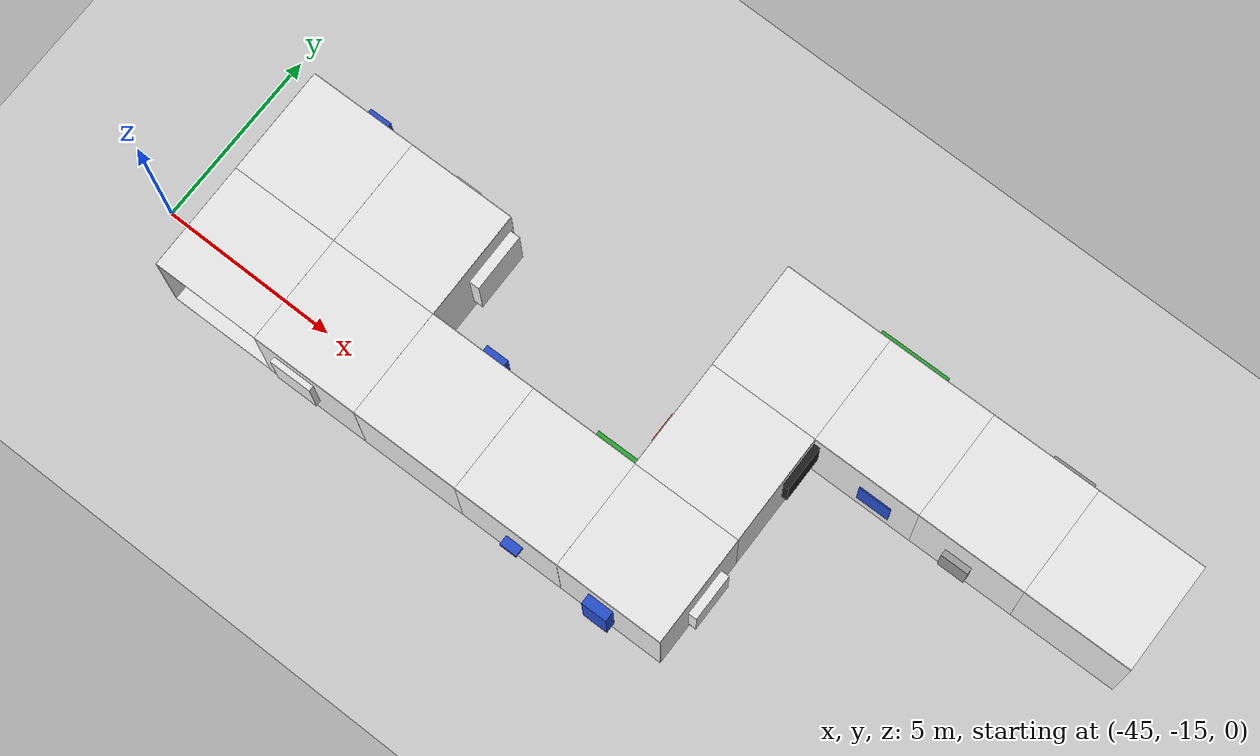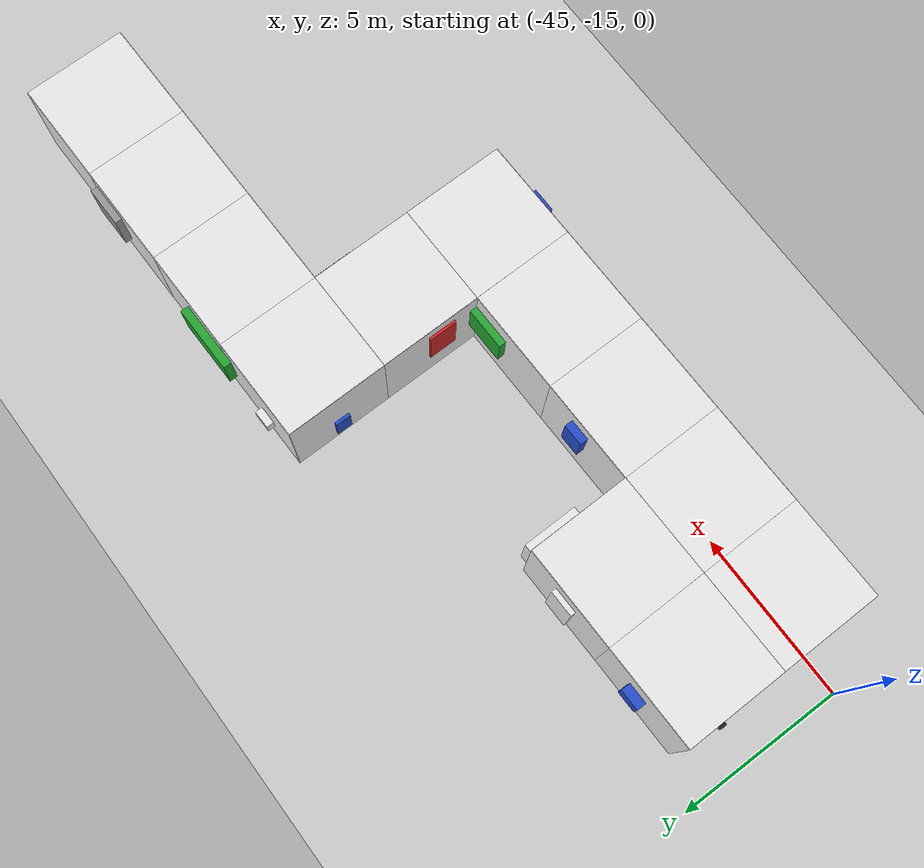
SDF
<sdf version="1.6">
 <world name="default">
  <model name="ground_plane">
   <static>1</static>
   <link name="link">
    <collision name="collision">
     <geometry><plane><normal>0 0 1</normal><size>100 100</size></plane></geometry>
     <surface><friction><ode><mu>100</mu><mu2>50</mu2></ode></friction></surface>
    </collision>
    <visual name="visual">
     <cast_shadows>0</cast_shadows>
     <geometry><plane><normal>0 0 1</normal><size>100 100</size></plane></geometry>
     <material>
      <script><uri>file://media/materials/scripts/gazebo.material</uri><name>Gazebo/Grey</name></script>
     </material>
    </visual>
   </link>
  </model>
  <model name="corridor_white">
   <model name="wall_right_0_0_0_0">
    <static>1</static>
    <pose>1.5 0 1.5 0 -0 1.57</pose>
    <link name="link">
     <collision name="collision"><geometry><box><size>3 0.02 3</size></box></geometry></collision>
     <visual name="visual">
      <material>
       <script><name>Gazebo/White</name><uri>file://media/materials/scripts/gazebo.material</uri></script>
      </material>
      <geometry><box><size>3 0.02 3</size></box></geometry>
     </visual>
    </link>
   </model>
   <model name="wall_left_0_0_0_0">
    <static>1</static>
    <pose>-1.5 0 1.5 0 -0 1.57</pose>
    <link name="link">
     <collision name="collision"><geometry><box><size>3 0.02 3</size></box></geometry></collision>
     <visual name="visual">
      <material>
       <script><name>Gazebo/White</name><uri>file://media/materials/scripts/gazebo.material</uri></script>
      </material>
      <geometry><box><size>3 0.02 3</size></box></geometry>
     </visual>
    </link>
   </model>
   <model name="wall_top_0_0_0_0">
    <static>1</static>
    <pose>0 0 3 1.57 -0 0</pose>
    <link name="link">
     <collision name="collision"><geometry><box><size>3 0.02 3</size></box></geometry></collision>
     <visual name="visual">
      <material>
       <script><name>Gazebo/White</name><uri>file://media/materials/scripts/gazebo.material</uri></script>
      </material>
      <geometry><box><size>3 0.02 3</size></box></geometry>
     </visual>
    </link>
   </model>
   <model name="wall_bottom_0_0_0_0">
    <static>1</static>
    <pose>0 0 0 1.57 -0 0</pose>
    <link name="link">
     <collision name="collision"><geometry><box><size>3 0.02 3</size></box></geometry></collision>
     <visual name="visual">
      <material>
       <script><name>Gazebo/White</name><uri>file://media/materials/scripts/gazebo.material</uri></script>
      </material>
      <geometry><box><size>3 0.02 3</size></box></geometry>
     </visual>
    </link>
   </model>
   <model name="wall_right_0_1_0_1">
    <static>1</static>
    <pose>1.5 3 1.5 0 -0 1.57</pose>
    <link name="link">
     <collision name="collision"><geometry><box><size>3 0.02 3</size></box></geometry></collision>
     <visual name="visual">
      <material>
       <script><name>Gazebo/White</name><uri>file://media/materials/scripts/gazebo.material</uri></script>
      </material>
      <geometry><box><size>3 0.02 3</size></box></geometry>
     </visual>
    </link>
   </model>
   <model name="wall_left_0_1_0_1">
    <static>1</static>
    <pose>-1.5 3 1.5 0 -0 1.57</pose>
    <link name="link">
     <collision name="collision"><geometry><box><size>3 0.02 3</size></box></geometry></collision>
     <visual name="visual">
      <material>
       <script><name>Gazebo/White</name><uri>file://media/materials/scripts/gazebo.material</uri></script>
      </material>
      <geometry><box><size>3 0.02 3</size></box></geometry>
     </visual>
    </link>
   </model>
   <model name="wall_top_0_1_0_1">
    <static>1</static>
    <pose>0 3 3 1.57 -0 0</pose>
    <link name="link">
     <collision name="collision"><geometry><box><size>3 0.02 3</size></box></geometry></collision>
     <visual name="visual">
      <material>
       <script><name>Gazebo/White</name><uri>file://media/materials/scripts/gazebo.material</uri></script>
      </material>
      <geometry><box><size>3 0.02 3</size></box></geometry>
     </visual>
    </link>
   </model>
   <model name="wall_bottom_0_1_0_1">
    <static>1</static>
    <pose>0 3 0 1.57 -0 0</pose>
    <link name="link">
     <collision name="collision"><geometry><box><size>3 0.02 3</size></box></geometry></collision>
     <visual name="visual">
      <material>
       <script><name>Gazebo/White</name><uri>file://media/materials/scripts/gazebo.material</uri></script>
      </material>
      <geometry><box><size>3 0.02 3</size></box></geometry>
     </visual>
    </link>
   </model>
   <model name="panel_0_1_0_1">
    <static>1</static>
    <pose>1.5 2.22415 1.7688 0 -0 0</pose>
    <link name="link">
     <collision name="collision"><geometry><box><size>0.423083 1.17974 1.35894</size></box></geometry></collision>
     <visual name="visual">
      <material>
       <script><name>Gazebo/Grey</name><uri>file://media/materials/scripts/gazebo.material</uri></script>
      </material>
      <geometry><box><size>0.423083 1.17974 1.35894</size></box></geometry>
     </visual>
    </link>
   </model>
   <model name="panel_0_1_1_1">
    <static>1</static>
    <pose>-1.5 3.21593 1.14979 0 -0 0</pose>
    <link name="link">
     <collision name="collision"><geometry><box><size>0.368284 0.767585 1.09945</size></box></geometry></collision>
     <visual name="visual">
      <material>
       <script><name>Gazebo/Grey</name><uri>file://media/materials/scripts/gazebo.material</uri></script>
      </material>
      <geometry><box><size>0.368284 0.767585 1.09945</size></box></geometry>
     </visual>
    </link>
   </model>
   <model name="wall_right_0_2_0_1">
    <static>1</static>
    <pose>1.5 6 1.5 0 -0 1.57</pose>
    <link name="link">
     <collision name="collision"><geometry><box><size>3 0.02 3</size></box></geometry></collision>
     <visual name="visual">
      <material>
       <script><name>Gazebo/White</name><uri>file://media/materials/scripts/gazebo.material</uri></script>
      </material>
      <geometry><box><size>3 0.02 3</size></box></geometry>
     </visual>
    </link>
   </model>
   <model name="wall_left_0_2_0_1">
    <static>1</static>
    <pose>-1.5 6 1.5 0 -0 1.57</pose>
    <link name="link">
     <collision name="collision"><geometry><box><size>3 0.02 3</size></box></geometry></collision>
     <visual name="visual">
      <material>
       <script><name>Gazebo/White</name><uri>file://media/materials/scripts/gazebo.material</uri></script>
      </material>
      <geometry><box><size>3 0.02 3</size></box></geometry>
     </visual>
    </link>
   </model>
   <model name="wall_top_0_2_0_1">
    <static>1</static>
    <pose>0 6 3 1.57 -0 0</pose>
    <link name="link">
     <collision name="collision"><geometry><box><size>3 0.02 3</size></box></geometry></collision>
     <visual name="visual">
      <material>
       <script><name>Gazebo/White</name><uri>file://media/materials/scripts/gazebo.material</uri></script>
      </material>
      <geometry><box><size>3 0.02 3</size></box></geometry>
     </visual>
    </link>
   </model>
   <model name="wall_bottom_0_2_0_1">
    <static>1</static>
    <pose>0 6 0 1.57 -0 0</pose>
    <link name="link">
     <collision name="collision"><geometry><box><size>3 0.02 3</size></box></geometry></collision>
     <visual name="visual">
      <material>
       <script><name>Gazebo/White</name><uri>file://media/materials/scripts/gazebo.material</uri></script>
      </material>
      <geometry><box><size>3 0.02 3</size></box></geometry>
     </visual>
    </link>
   </model>
   <model name="panel_0_2_0_1">
    <static>1</static>
    <pose>1.5 6.87153 1.77497 0 -0 0</pose>
    <link name="link">
     <collision name="collision"><geometry><box><size>0.497895 1.96394 1.19346</size></box></geometry></collision>
     <visual name="visual">
      <material>
       <script><name>Gazebo/Green</name><uri>file://media/materials/scripts/gazebo.material</uri></script>
      </material>
      <geometry><box><size>0.497895 1.96394 1.19346</size></box></geometry>
     </visual>
    </link>
   </model>
   <model name="panel_0_2_1_1">
    <static>1</static>
    <pose>-1.5 5.63586 1.17555 0 -0 0</pose>
    <link name="link">
     <collision name="collision"><geometry><box><size>0.090727 0.924567 1.11927</size></box></geometry></collision>
     <visual name="visual">
      <material>
       <script><name>Gazebo/Blue</name><uri>file://media/materials/scripts/gazebo.material</uri></script>
      </material>
      <geometry><box><size>0.090727 0.924567 1.11927</size></box></geometry>
     </visual>
    </link>
   </model>
   <model name="wall_front_0_3_0_3">
    <static>1</static>
    <pose>0 10.5 1.5 0 -0 0</pose>
    <link name="link">
     <collision name="collision"><geometry><box><size>3 0.02 3</size></box></geometry></collision>
     <visual name="visual">
      <material>
       <script><name>Gazebo/White</name><uri>file://media/materials/scripts/gazebo.material</uri></script>
      </material>
      <geometry><box><size>3 0.02 3</size></box></geometry>
     </visual>
    </link>
   </model>
   <model name="wall_right_0_3_0_3">
    <static>1</static>
    <pose>1.5 9 1.5 0 -0 1.57</pose>
    <link name="link">
     <collision name="collision"><geometry><box><size>3 0.02 3</size></box></geometry></collision>
     <visual name="visual">
      <material>
       <script><name>Gazebo/White</name><uri>file://media/materials/scripts/gazebo.material</uri></script>
      </material>
      <geometry><box><size>3 0.02 3</size></box></geometry>
     </visual>
    </link>
   </model>
   <model name="wall_top_0_3_0_3">
    <static>1</static>
    <pose>0 9 3 1.57 -0 0</pose>
    <link name="link">
     <collision name="collision"><geometry><box><size>3 0.02 3</size></box></geometry></collision>
     <visual name="visual">
      <material>
       <script><name>Gazebo/White</name><uri>file://media/materials/scripts/gazebo.material</uri></script>
      </material>
      <geometry><box><size>3 0.02 3</size></box></geometry>
     </visual>
    </link>
   </model>
   <model name="wall_bottom_0_3_0_3">
    <static>1</static>
    <pose>0 9 0 1.57 -0 0</pose>
    <link name="link">
     <collision name="collision"><geometry><box><size>3 0.02 3</size></box></geometry></collision>
     <visual name="visual">
      <material>
       <script><name>Gazebo/White</name><uri>file://media/materials/scripts/gazebo.material</uri></script>
      </material>
      <geometry><box><size>3 0.02 3</size></box></geometry>
     </visual>
    </link>
   </model>
   <model name="panel_0_3_0_3">
    <static>1</static>
    <pose>1.5 9.28694 1.21004 0 -0 0</pose>
    <link name="link">
     <collision name="collision">
      <geometry><box><size>0.456126 0.525918 0.392894</size></box></geometry>
     </collision>
     <visual name="visual">
      <material>
       <script><name>Gazebo/White</name><uri>file://media/materials/scripts/gazebo.material</uri></script>
      </material>
      <geometry><box><size>0.456126 0.525918 0.392894</size></box></geometry>
     </visual>
    </link>
   </model>
   <model name="panel_0_3_1_3">
    <static>1</static>
    <pose>0.004072 10.5 0.861668 0 -0 1.57</pose>
    <link name="link">
     <collision name="collision">
      <geometry><box><size>0.204372 0.459037 0.886738</size></box></geometry>
     </collision>
     <visual name="visual">
      <material>
       <script><name>Gazebo/Blue</name><uri>file://media/materials/scripts/gazebo.material</uri></script>
      </material>
      <geometry><box><size>0.204372 0.459037 0.886738</size></box></geometry>
     </visual>
    </link>
   </model>
   <model name="wall_right_-1_3_0_1">
    <static>1</static>
    <pose>-3 10.5 1.5 0 -0 3.14</pose>
    <link name="link">
     <collision name="collision"><geometry><box><size>3 0.02 3</size></box></geometry></collision>
     <visual name="visual">
      <material>
       <script><name>Gazebo/White</name><uri>file://media/materials/scripts/gazebo.material</uri></script>
      </material>
      <geometry><box><size>3 0.02 3</size></box></geometry>
     </visual>
    </link>
   </model>
   <model name="wall_left_-1_3_0_1">
    <static>1</static>
    <pose>-3 7.5 1.5 0 -0 3.14</pose>
    <link name="link">
     <collision name="collision"><geometry><box><size>3 0.02 3</size></box></geometry></collision>
     <visual name="visual">
      <material>
       <script><name>Gazebo/White</name><uri>file://media/materials/scripts/gazebo.material</uri></script>
      </material>
      <geometry><box><size>3 0.02 3</size></box></geometry>
     </visual>
    </link>
   </model>
   <model name="wall_top_-1_3_0_1">
    <static>1</static>
    <pose>-3 9 3 1.57 -0 1.57</pose>
    <link name="link">
     <collision name="collision"><geometry><box><size>3 0.02 3</size></box></geometry></collision>
     <visual name="visual">
      <material>
       <script><name>Gazebo/White</name><uri>file://media/materials/scripts/gazebo.material</uri></script>
      </material>
      <geometry><box><size>3 0.02 3</size></box></geometry>
     </visual>
    </link>
   </model>
   <model name="wall_bottom_-1_3_0_1">
    <static>1</static>
    <pose>-3 9 0 1.57 -0 1.57</pose>
    <link name="link">
     <collision name="collision"><geometry><box><size>3 0.02 3</size></box></geometry></collision>
     <visual name="visual">
      <material>
       <script><name>Gazebo/White</name><uri>file://media/materials/scripts/gazebo.material</uri></script>
      </material>
      <geometry><box><size>3 0.02 3</size></box></geometry>
     </visual>
    </link>
   </model>
   <model name="panel_-1_3_0_1">
    <static>1</static>
    <pose>-3.34203 10.5 1.88659 0 -0 1.57</pose>
    <link name="link">
     <collision name="collision"><geometry><box><size>0.178329 0.828826 1.44132</size></box></geometry></collision>
     <visual name="visual">
      <material>
       <script><name>Gazebo/Red</name><uri>file://media/materials/scripts/gazebo.material</uri></script>
      </material>
      <geometry><box><size>0.178329 0.828826 1.44132</size></box></geometry>
     </visual>
    </link>
   </model>
   <model name="panel_-1_3_1_1">
    <static>1</static>
    <pose>-1.80466 7.5 1.92212 0 -0 1.57</pose>
    <link name="link">
     <collision name="collision"><geometry><box><size>0.357357 1.8738 1.27353</size></box></geometry></collision>
     <visual name="visual">
      <material>
       <script><name>Gazebo/Black</name><uri>file://media/materials/scripts/gazebo.material</uri></script>
      </material>
      <geometry><box><size>0.357357 1.8738 1.27353</size></box></geometry>
     </visual>
    </link>
   </model>
   <model name="wall_front_-2_3_0_2">
    <static>1</static>
    <pose>-7.5 9 1.5 0 -0 1.57</pose>
    <link name="link">
     <collision name="collision"><geometry><box><size>3 0.02 3</size></box></geometry></collision>
     <visual name="visual">
      <material>
       <script><name>Gazebo/White</name><uri>file://media/materials/scripts/gazebo.material</uri></script>
      </material>
      <geometry><box><size>3 0.02 3</size></box></geometry>
     </visual>
    </link>
   </model>
   <model name="wall_left_-2_3_0_2">
    <static>1</static>
    <pose>-6 7.5 1.5 0 -0 3.14</pose>
    <link name="link">
     <collision name="collision"><geometry><box><size>3 0.02 3</size></box></geometry></collision>
     <visual name="visual">
      <material>
       <script><name>Gazebo/White</name><uri>file://media/materials/scripts/gazebo.material</uri></script>
      </material>
      <geometry><box><size>3 0.02 3</size></box></geometry>
     </visual>
    </link>
   </model>
   <model name="wall_top_-2_3_0_2">
    <static>1</static>
    <pose>-6 9 3 1.57 -0 1.57</pose>
    <link name="link">
     <collision name="collision"><geometry><box><size>3 0.02 3</size></box></geometry></collision>
     <visual name="visual">
      <material>
       <script><name>Gazebo/White</name><uri>file://media/materials/scripts/gazebo.material</uri></script>
      </material>
      <geometry><box><size>3 0.02 3</size></box></geometry>
     </visual>
    </link>
   </model>
   <model name="wall_bottom_-2_3_0_2">
    <static>1</static>
    <pose>-6 9 0 1.57 -0 1.57</pose>
    <link name="link">
     <collision name="collision"><geometry><box><size>3 0.02 3</size></box></geometry></collision>
     <visual name="visual">
      <material>
       <script><name>Gazebo/White</name><uri>file://media/materials/scripts/gazebo.material</uri></script>
      </material>
      <geometry><box><size>3 0.02 3</size></box></geometry>
     </visual>
    </link>
   </model>
   <model name="panel_-2_3_0_2">
    <static>1</static>
    <pose>-7.5 9.21994 1.5929 0 -0 3.14</pose>
    <link name="link">
     <collision name="collision"><geometry><box><size>0.592467 0.712481 1.60356</size></box></geometry></collision>
     <visual name="visual">
      <material>
       <script><name>Gazebo/Blue</name><uri>file://media/materials/scripts/gazebo.material</uri></script>
      </material>
      <geometry><box><size>0.592467 0.712481 1.60356</size></box></geometry>
     </visual>
    </link>
   </model>
   <model name="panel_-2_3_1_2">
    <static>1</static>
    <pose>-5.77324 7.5 1.18134 0 -0 1.57</pose>
    <link name="link">
     <collision name="collision"><geometry><box><size>0.480666 1.28267 1.40655</size></box></geometry></collision>
     <visual name="visual">
      <material>
       <script><name>Gazebo/White</name><uri>file://media/materials/scripts/gazebo.material</uri></script>
      </material>
      <geometry><box><size>0.480666 1.28267 1.40655</size></box></geometry>
     </visual>
    </link>
   </model>
   <model name="wall_right_-2_4_0_1">
    <static>1</static>
    <pose>-4.5 12 1.5 0 -0 1.57</pose>
    <link name="link">
     <collision name="collision"><geometry><box><size>3 0.02 3</size></box></geometry></collision>
     <visual name="visual">
      <material>
       <script><name>Gazebo/White</name><uri>file://media/materials/scripts/gazebo.material</uri></script>
      </material>
      <geometry><box><size>3 0.02 3</size></box></geometry>
     </visual>
    </link>
   </model>
   <model name="wall_left_-2_4_0_1">
    <static>1</static>
    <pose>-7.5 12 1.5 0 -0 1.57</pose>
    <link name="link">
     <collision name="collision"><geometry><box><size>3 0.02 3</size></box></geometry></collision>
     <visual name="visual">
      <material>
       <script><name>Gazebo/White</name><uri>file://media/materials/scripts/gazebo.material</uri></script>
      </material>
      <geometry><box><size>3 0.02 3</size></box></geometry>
     </visual>
    </link>
   </model>
   <model name="wall_top_-2_4_0_1">
    <static>1</static>
    <pose>-6 12 3 1.57 -0 0</pose>
    <link name="link">
     <collision name="collision"><geometry><box><size>3 0.02 3</size></box></geometry></collision>
     <visual name="visual">
      <material>
       <script><name>Gazebo/White</name><uri>file://media/materials/scripts/gazebo.material</uri></script>
      </material>
      <geometry><box><size>3 0.02 3</size></box></geometry>
     </visual>
    </link>
   </model>
   <model name="wall_bottom_-2_4_0_1">
    <static>1</static>
    <pose>-6 12 0 1.57 -0 0</pose>
    <link name="link">
     <collision name="collision"><geometry><box><size>3 0.02 3</size></box></geometry></collision>
     <visual name="visual">
      <material>
       <script><name>Gazebo/White</name><uri>file://media/materials/scripts/gazebo.material</uri></script>
      </material>
      <geometry><box><size>3 0.02 3</size></box></geometry>
     </visual>
    </link>
   </model>
   <model name="panel_-2_4_0_1">
    <static>1</static>
    <pose>-4.5 10.9549 1.85162 0 -0 0</pose>
    <link name="link">
     <collision name="collision"><geometry><box><size>0.446083 1.60102 1.06304</size></box></geometry></collision>
     <visual name="visual">
      <material>
       <script><name>Gazebo/Green</name><uri>file://media/materials/scripts/gazebo.material</uri></script>
      </material>
      <geometry><box><size>0.446083 1.60102 1.06304</size></box></geometry>
     </visual>
    </link>
   </model>
   <model name="panel_-2_4_1_1">
    <static>1</static>
    <pose>-7.5 11.7996 1.74514 0 -0 0</pose>
    <link name="link">
     <collision name="collision">
      <geometry><box><size>0.541126 0.490364 0.168446</size></box></geometry>
     </collision>
     <visual name="visual">
      <material>
       <script><name>Gazebo/Blue</name><uri>file://media/materials/scripts/gazebo.material</uri></script>
      </material>
      <geometry><box><size>0.541126 0.490364 0.168446</size></box></geometry>
     </visual>
    </link>
   </model>
   <model name="wall_right_-2_5_0_1">
    <static>1</static>
    <pose>-4.5 15 1.5 0 -0 1.57</pose>
    <link name="link">
     <collision name="collision"><geometry><box><size>3 0.02 3</size></box></geometry></collision>
     <visual name="visual">
      <material>
       <script><name>Gazebo/White</name><uri>file://media/materials/scripts/gazebo.material</uri></script>
      </material>
      <geometry><box><size>3 0.02 3</size></box></geometry>
     </visual>
    </link>
   </model>
   <model name="wall_left_-2_5_0_1">
    <static>1</static>
    <pose>-7.5 15 1.5 0 -0 1.57</pose>
    <link name="link">
     <collision name="collision"><geometry><box><size>3 0.02 3</size></box></geometry></collision>
     <visual name="visual">
      <material>
       <script><name>Gazebo/White</name><uri>file://media/materials/scripts/gazebo.material</uri></script>
      </material>
      <geometry><box><size>3 0.02 3</size></box></geometry>
     </visual>
    </link>
   </model>
   <model name="wall_top_-2_5_0_1">
    <static>1</static>
    <pose>-6 15 3 1.57 -0 0</pose>
    <link name="link">
     <collision name="collision"><geometry><box><size>3 0.02 3</size></box></geometry></collision>
     <visual name="visual">
      <material>
       <script><name>Gazebo/White</name><uri>file://media/materials/scripts/gazebo.material</uri></script>
      </material>
      <geometry><box><size>3 0.02 3</size></box></geometry>
     </visual>
    </link>
   </model>
   <model name="wall_bottom_-2_5_0_1">
    <static>1</static>
    <pose>-6 15 0 1.57 -0 0</pose>
    <link name="link">
     <collision name="collision"><geometry><box><size>3 0.02 3</size></box></geometry></collision>
     <visual name="visual">
      <material>
       <script><name>Gazebo/White</name><uri>file://media/materials/scripts/gazebo.material</uri></script>
      </material>
      <geometry><box><size>3 0.02 3</size></box></geometry>
     </visual>
    </link>
   </model>
   <model name="panel_-2_5_0_1">
    <static>1</static>
    <pose>-4.5 14.7855 2.02973 0 -0 0</pose>
    <link name="link">
     <collision name="collision"><geometry><box><size>0.500894 0.631137 1.05821</size></box></geometry></collision>
     <visual name="visual">
      <material>
       <script><name>Gazebo/Blue</name><uri>file://media/materials/scripts/gazebo.material</uri></script>
      </material>
      <geometry><box><size>0.500894 0.631137 1.05821</size></box></geometry>
     </visual>
    </link>
   </model>
   <model name="panel_-2_5_1_1">
    <static>1</static>
    <pose>-7.5 14.7176 0.867343 0 -0 0</pose>
    <link name="link">
     <collision name="collision">
      <geometry><box><size>0.002502 0.578751 0.669557</size></box></geometry>
     </collision>
     <visual name="visual">
      <material>
       <script><name>Gazebo/Black</name><uri>file://media/materials/scripts/gazebo.material</uri></script>
      </material>
      <geometry><box><size>0.002502 0.578751 0.669557</size></box></geometry>
     </visual>
    </link>
   </model>
   <model name="wall_front_-2_6_0_2">
    <static>1</static>
    <pose>-6 19.5 1.5 0 -0 0</pose>
    <link name="link">
     <collision name="collision"><geometry><box><size>3 0.02 3</size></box></geometry></collision>
     <visual name="visual">
      <material>
       <script><name>Gazebo/White</name><uri>file://media/materials/scripts/gazebo.material</uri></script>
      </material>
      <geometry><box><size>3 0.02 3</size></box></geometry>
     </visual>
    </link>
   </model>
   <model name="wall_left_-2_6_0_2">
    <static>1</static>
    <pose>-7.5 18 1.5 0 -0 1.57</pose>
    <link name="link">
     <collision name="collision"><geometry><box><size>3 0.02 3</size></box></geometry></collision>
     <visual name="visual">
      <material>
       <script><name>Gazebo/White</name><uri>file://media/materials/scripts/gazebo.material</uri></script>
      </material>
      <geometry><box><size>3 0.02 3</size></box></geometry>
     </visual>
    </link>
   </model>
   <model name="wall_top_-2_6_0_2">
    <static>1</static>
    <pose>-6 18 3 1.57 -0 0</pose>
    <link name="link">
     <collision name="collision"><geometry><box><size>3 0.02 3</size></box></geometry></collision>
     <visual name="visual">
      <material>
       <script><name>Gazebo/White</name><uri>file://media/materials/scripts/gazebo.material</uri></script>
      </material>
      <geometry><box><size>3 0.02 3</size></box></geometry>
     </visual>
    </link>
   </model>
   <model name="wall_bottom_-2_6_0_2">
    <static>1</static>
    <pose>-6 18 0 1.57 -0 0</pose>
    <link name="link">
     <collision name="collision"><geometry><box><size>3 0.02 3</size></box></geometry></collision>
     <visual name="visual">
      <material>
       <script><name>Gazebo/White</name><uri>file://media/materials/scripts/gazebo.material</uri></script>
      </material>
      <geometry><box><size>3 0.02 3</size></box></geometry>
     </visual>
    </link>
   </model>
   <model name="panel_-2_6_0_2">
    <static>1</static>
    <pose>-6.10652 19.5 0.664431 0 -0 1.57</pose>
    <link name="link">
     <collision name="collision">
      <geometry><box><size>0.586059 0.300396 0.272569</size></box></geometry>
     </collision>
     <visual name="visual">
      <material>
       <script><name>Gazebo/Grey</name><uri>file://media/materials/scripts/gazebo.material</uri></script>
      </material>
      <geometry><box><size>0.586059 0.300396 0.272569</size></box></geometry>
     </visual>
    </link>
   </model>
   <model name="panel_-2_6_1_2">
    <static>1</static>
    <pose>-7.5 18.3732 1.74937 0 -0 0</pose>
    <link name="link">
     <collision name="collision"><geometry><box><size>0.330461 1.18967 1.4989</size></box></geometry></collision>
     <visual name="visual">
      <material>
       <script><name>Gazebo/White</name><uri>file://media/materials/scripts/gazebo.material</uri></script>
      </material>
      <geometry><box><size>0.330461 1.18967 1.4989</size></box></geometry>
     </visual>
    </link>
   </model>
   <model name="wall_front_-1_6_0_3">
    <static>1</static>
    <pose>-1.5 18 1.5 0 0 -1.57</pose>
    <link name="link">
     <collision name="collision"><geometry><box><size>3 0.02 3</size></box></geometry></collision>
     <visual name="visual">
      <material>
       <script><name>Gazebo/White</name><uri>file://media/materials/scripts/gazebo.material</uri></script>
      </material>
      <geometry><box><size>3 0.02 3</size></box></geometry>
     </visual>
    </link>
   </model>
   <model name="wall_right_-1_6_0_3">
    <static>1</static>
    <pose>-3 16.5 1.5 0 -0 0</pose>
    <link name="link">
     <collision name="collision"><geometry><box><size>3 0.02 3</size></box></geometry></collision>
     <visual name="visual">
      <material>
       <script><name>Gazebo/White</name><uri>file://media/materials/scripts/gazebo.material</uri></script>
      </material>
      <geometry><box><size>3 0.02 3</size></box></geometry>
     </visual>
    </link>
   </model>
   <model name="wall_top_-1_6_0_3">
    <static>1</static>
    <pose>-3 18 3 1.57 0 -1.57</pose>
    <link name="link">
     <collision name="collision"><geometry><box><size>3 0.02 3</size></box></geometry></collision>
     <visual name="visual">
      <material>
       <script><name>Gazebo/White</name><uri>file://media/materials/scripts/gazebo.material</uri></script>
      </material>
      <geometry><box><size>3 0.02 3</size></box></geometry>
     </visual>
    </link>
   </model>
   <model name="wall_bottom_-1_6_0_3">
    <static>1</static>
    <pose>-3 18 0 1.57 0 -1.57</pose>
    <link name="link">
     <collision name="collision"><geometry><box><size>3 0.02 3</size></box></geometry></collision>
     <visual name="visual">
      <material>
       <script><name>Gazebo/White</name><uri>file://media/materials/scripts/gazebo.material</uri></script>
      </material>
      <geometry><box><size>3 0.02 3</size></box></geometry>
     </visual>
    </link>
   </model>
   <model name="panel_-1_6_0_3">
    <static>1</static>
    <pose>-1.5 17.9381 1.46148 0 -0 0</pose>
    <link name="link">
     <collision name="collision"><geometry><box><size>0.324135 0.766852 1.90257</size></box></geometry></collision>
     <visual name="visual">
      <material>
       <script><name>Gazebo/White</name><uri>file://media/materials/scripts/gazebo.material</uri></script>
      </material>
      <geometry><box><size>0.324135 0.766852 1.90257</size></box></geometry>
     </visual>
    </link>
   </model>
   <model name="panel_-1_6_1_3">
    <static>1</static>
    <pose>-2.39979 16.5 1.31777 0 0 -1.57</pose>
    <link name="link">
     <collision name="collision"><geometry><box><size>0.5732 1.60618 1.65816</size></box></geometry></collision>
     <visual name="visual">
      <material>
       <script><name>Gazebo/White</name><uri>file://media/materials/scripts/gazebo.material</uri></script>
      </material>
      <geometry><box><size>0.5732 1.60618 1.65816</size></box></geometry>
     </visual>
    </link>
   </model>
   <model name="wall_front_-1_7_0_3">
    <static>1</static>
    <pose>-3 22.5 1.5 0 -0 0</pose>
    <link name="link">
     <collision name="collision"><geometry><box><size>3 0.02 3</size></box></geometry></collision>
     <visual name="visual">
      <material>
       <script><name>Gazebo/White</name><uri>file://media/materials/scripts/gazebo.material</uri></script>
      </material>
      <geometry><box><size>3 0.02 3</size></box></geometry>
     </visual>
    </link>
   </model>
   <model name="wall_right_-1_7_0_3">
    <static>1</static>
    <pose>-1.5 21 1.5 0 -0 1.57</pose>
    <link name="link">
     <collision name="collision"><geometry><box><size>3 0.02 3</size></box></geometry></collision>
     <visual name="visual">
      <material>
       <script><name>Gazebo/White</name><uri>file://media/materials/scripts/gazebo.material</uri></script>
      </material>
      <geometry><box><size>3 0.02 3</size></box></geometry>
     </visual>
    </link>
   </model>
   <model name="wall_top_-1_7_0_3">
    <static>1</static>
    <pose>-3 21 3 1.57 -0 0</pose>
    <link name="link">
     <collision name="collision"><geometry><box><size>3 0.02 3</size></box></geometry></collision>
     <visual name="visual">
      <material>
       <script><name>Gazebo/White</name><uri>file://media/materials/scripts/gazebo.material</uri></script>
      </material>
      <geometry><box><size>3 0.02 3</size></box></geometry>
     </visual>
    </link>
   </model>
   <model name="wall_bottom_-1_7_0_3">
    <static>1</static>
    <pose>-3 21 0 1.57 -0 0</pose>
    <link name="link">
     <collision name="collision"><geometry><box><size>3 0.02 3</size></box></geometry></collision>
     <visual name="visual">
      <material>
       <script><name>Gazebo/White</name><uri>file://media/materials/scripts/gazebo.material</uri></script>
      </material>
      <geometry><box><size>3 0.02 3</size></box></geometry>
     </visual>
    </link>
   </model>
   <model name="panel_-1_7_0_3">
    <static>1</static>
    <pose>-2.90239 22.5 0.691552 0 -0 1.57</pose>
    <link name="link">
     <collision name="collision">
      <geometry><box><size>0.587432 0.184802 0.290461</size></box></geometry>
     </collision>
     <visual name="visual">
      <material>
       <script><name>Gazebo/Black</name><uri>file://media/materials/scripts/gazebo.material</uri></script>
      </material>
      <geometry><box><size>0.587432 0.184802 0.290461</size></box></geometry>
     </visual>
    </link>
   </model>
   <model name="panel_-1_7_1_3">
    <static>1</static>
    <pose>-1.5 20.7718 1.91081 0 -0 0</pose>
    <link name="link">
     <collision name="collision">
      <geometry><box><size>0.574903 0.623825 0.625215</size></box></geometry>
     </collision>
     <visual name="visual">
      <material>
       <script><name>Gazebo/Blue</name><uri>file://media/materials/scripts/gazebo.material</uri></script>
      </material>
      <geometry><box><size>0.574903 0.623825 0.625215</size></box></geometry>
     </visual>
    </link>
   </model>
   <model name="wall_right_-2_7_0_4">
    <static>1</static>
    <pose>-6 22.5 1.5 0 -0 3.14</pose>
    <link name="link">
     <collision name="collision"><geometry><box><size>3 0.02 3</size></box></geometry></collision>
     <visual name="visual">
      <material>
       <script><name>Gazebo/White</name><uri>file://media/materials/scripts/gazebo.material</uri></script>
      </material>
      <geometry><box><size>3 0.02 3</size></box></geometry>
     </visual>
    </link>
   </model>
   <model name="wall_left_-2_7_0_4">
    <static>1</static>
    <pose>-6 19.5 1.5 0 -0 3.14</pose>
    <link name="link">
     <collision name="collision"><geometry><box><size>3 0.02 3</size></box></geometry></collision>
     <visual name="visual">
      <material>
       <script><name>Gazebo/White</name><uri>file://media/materials/scripts/gazebo.material</uri></script>
      </material>
      <geometry><box><size>3 0.02 3</size></box></geometry>
     </visual>
    </link>
   </model>
   <model name="wall_top_-2_7_0_4">
    <static>1</static>
    <pose>-6 21 3 1.57 -0 1.57</pose>
    <link name="link">
     <collision name="collision"><geometry><box><size>3 0.02 3</size></box></geometry></collision>
     <visual name="visual">
      <material>
       <script><name>Gazebo/White</name><uri>file://media/materials/scripts/gazebo.material</uri></script>
      </material>
      <geometry><box><size>3 0.02 3</size></box></geometry>
     </visual>
    </link>
   </model>
   <model name="wall_bottom_-2_7_0_4">
    <static>1</static>
    <pose>-6 21 0 1.57 -0 1.57</pose>
    <link name="link">
     <collision name="collision"><geometry><box><size>3 0.02 3</size></box></geometry></collision>
     <visual name="visual">
      <material>
       <script><name>Gazebo/White</name><uri>file://media/materials/scripts/gazebo.material</uri></script>
      </material>
      <geometry><box><size>3 0.02 3</size></box></geometry>
     </visual>
    </link>
   </model>
   <pose>-21.1242 -8.78844 0 0 -0 1.58502</pose>
  </model>
 </world>
</sdf>
